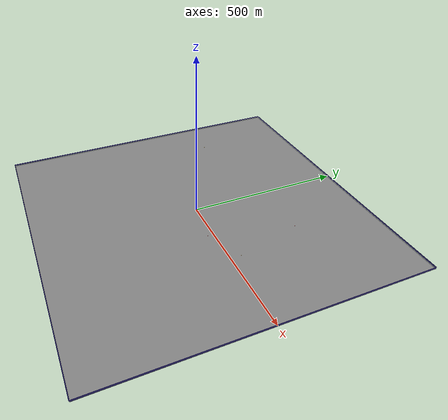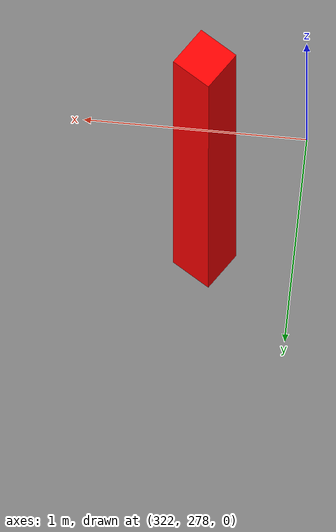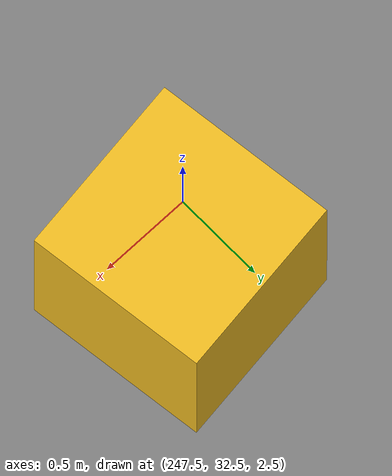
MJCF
<mujoco model="unnamed_model">
  <default>
    <default class="/" />
    <default class="border/" />
    <default class="border_1/" />
    <default class="border_2/" />
    <default class="border_3/" />
    <default class="agentplaceholder/" />
    <default class="placeholder_box/" />
    <default class="stone0/" />
    <default class="stone1/" />
    <default class="tree/" />
    <default class="tree_1/" />
  </default>
  <worldbody>
    <body name="border/">
      <body name="border/border" pos="0 501 2">
        <geom name="border/border_geom" class="border/" type="box" size="500 1 2" rgba="0.035000000000000003 0.016 0.28999999999999998 1" />
      </body>
    </body>
    <body name="border_1/">
      <body name="border_1/border" pos="0 -501 2">
        <geom name="border_1/border_geom" class="border_1/" type="box" size="500 1 2" rgba="0.035000000000000003 0.016 0.28999999999999998 1" />
      </body>
    </body>
    <body name="border_2/">
      <body name="border_2/border" pos="501 0 2">
        <geom name="border_2/border_geom" class="border_2/" type="box" size="1 500 2" rgba="0.035000000000000003 0.016 0.28999999999999998 1" />
      </body>
    </body>
    <body name="border_3/">
      <body name="border_3/border" pos="-501 0 2">
        <geom name="border_3/border_geom" class="border_3/" type="box" size="1 500 2" rgba="0.035000000000000003 0.016 0.28999999999999998 1" />
      </body>
    </body>
    <body euler="0 0 -172.45317399671683" name="agentplaceholder/">
      <joint name="agentplaceholder/boxagent_freeJoint/" class="/" type="free" />
      <body name="agentplaceholder/agentplaceholder" pos="-250 0 3" euler="0 0 0">
        <geom name="agentplaceholder/boxagent_geom" class="agentplaceholder/" type="box" size="0.5 0.5 0.5" rgba="0.94899999999999995 0.74509999999999998 0.1333 1" euler="0 0 0" />
      </body>
    </body>
    <body name="placeholder_box/">
      <body name="placeholder_box/placeholder_box" pos="-354.38035000000002 184.71180000000004 0.5" euler="0 0 -81.235243149993352">
        <geom name="placeholder_box/box_geom" class="placeholder_box/" type="box" size="0.5 0.5 0.5" rgba="0.94899999999999995 0.74509999999999998 0.1333 1" euler="0 0 0" />
      </body>
    </body>
    <body name="stone0/">
      <body name="stone0/stone0" pos="322.39555000000001 278.62920000000008 0.10000000000000001" euler="0 0 -122.842637290271">
        <geom name="stone0/stone_geom" class="stone0/" type="box" size="0.10000000000000001 0.10000000000000001 2" rgba="1 0 0 1" />
      </body>
    </body>
    <body name="stone1/">
      <body name="stone1/stone1" pos="190.66845000000001 245.9067 0.10000000000000001" euler="0 0 -48.410884368577683">
        <geom name="stone1/stone_geom" class="stone1/" type="box" size="0.10000000000000001 0.10000000000000001 2" rgba="1 0 0 1" />
      </body>
    </body>
    <body name="tree/">
      <body name="tree/tree" pos="130.98390000000001 -18.721099999999979 0.10000000000000001" euler="0 0 55.873932010947414">
        <geom name="tree/tree_geom" class="tree/" type="box" size="0.10000000000000001 0.10000000000000001 2" rgba="1 0 0 1" />
      </body>
    </body>
    <body name="tree_1/">
      <body name="tree_1/tree" pos="142.34674999999999 -488.14389999999997 0.10000000000000001" euler="0 0 148.77560313338671">
        <geom name="tree_1/tree_geom" class="tree_1/" type="box" size="0.10000000000000001 0.10000000000000001 2" rgba="1 0 0 1" />
      </body>
    </body>
    <geom name="base_plane" class="/" type="plane" size="500 500 0.10000000000000001" />
  </worldbody>
</mujoco>
